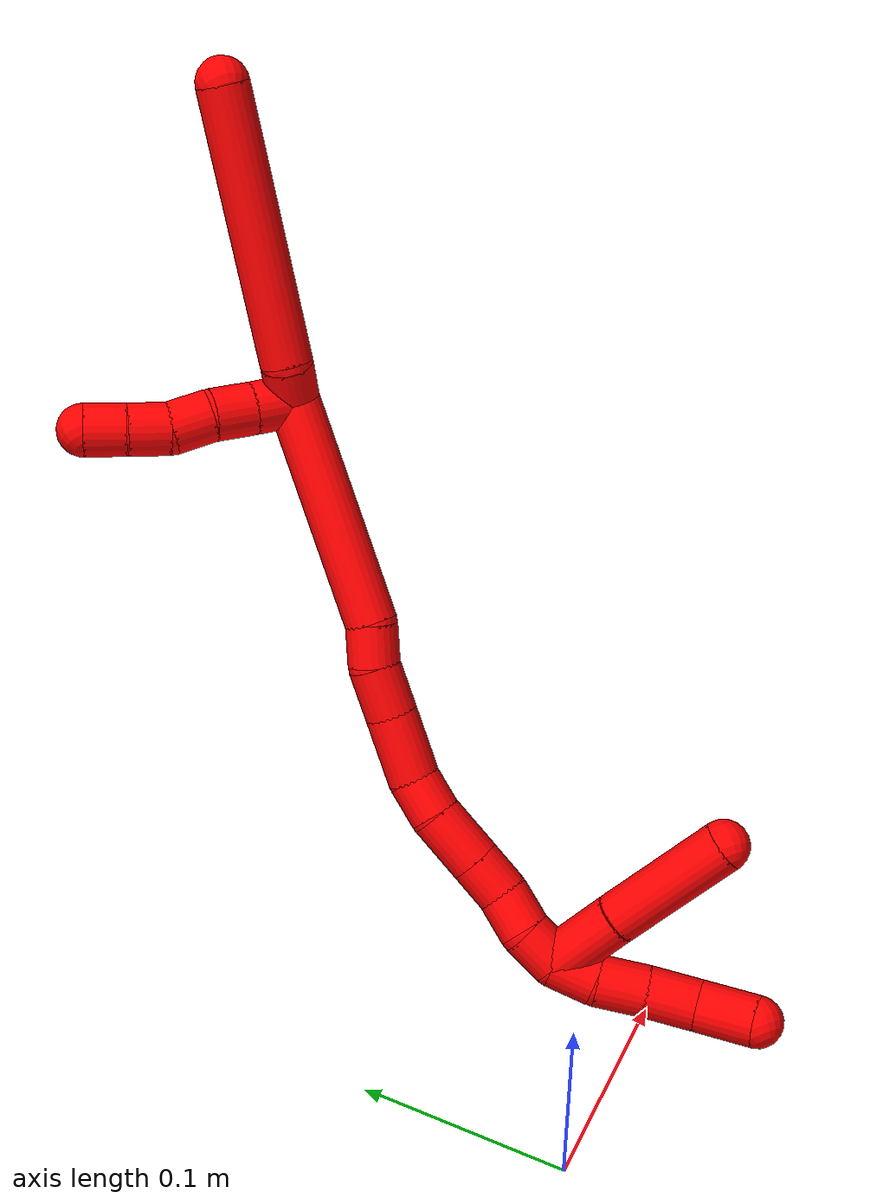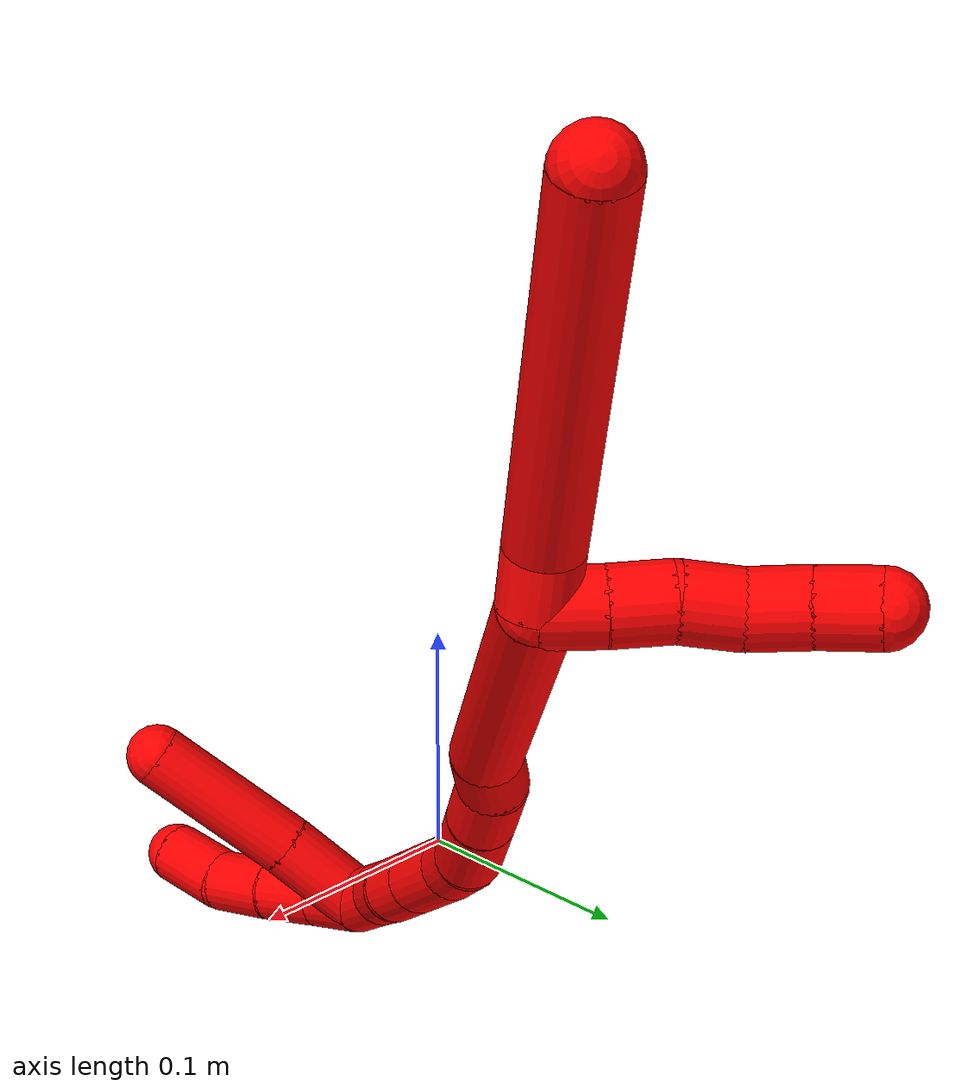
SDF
<sdf version="1.7">
 <world name="default">
  <model name="2">
   <static>0</static>
   <link name="2">
    <collision name="collision-cylinder-e_1_2_8">
     <pose>-0.006278 0.005696 0.005312 -0.820234 -0.678414 0.30444</pose>
     <geometry><cylinder><radius>0.0125</radius><length>0.020007</length></cylinder></geometry>
     <surface>
      <friction><ode><mu>1.16</mu><mu2>1.16</mu2><slip1>0</slip1><slip2>0</slip2></ode></friction>
      <contact><ode><kp>1e+06</kp><kd>1</kd><max_vel>0</max_vel><min_depth>0.001</min_depth></ode></contact>
     </surface>
    </collision>
    <visual name="visual-cylinder-e_1_2_8">
     <pose>-0.006278 0.005696 0.005312 -0.820234 -0.678414 0.30444</pose>
     <geometry><cylinder><radius>0.0125</radius><length>0.020007</length></cylinder></geometry>
     <material><ambient>1 0 0 1</ambient></material>
    </visual>
    <collision name="collision-cylinder-e_2_8_6">
     <pose>-0.044353 0.038367 0.060482 -0.495955 -0.511193 0.13213</pose>
     <geometry><cylinder><radius>0.0125</radius><length>0.129993</length></cylinder></geometry>
     <surface>
      <friction><ode><mu>1.16</mu><mu2>1.16</mu2><slip1>0</slip1><slip2>0</slip2></ode></friction>
      <contact><ode><kp>1e+06</kp><kd>1</kd><max_vel>0</max_vel><min_depth>0.001</min_depth></ode></contact>
     </surface>
    </collision>
    <visual name="visual-cylinder-e_2_8_6">
     <pose>-0.044353 0.038367 0.060482 -0.495955 -0.511193 0.13213</pose>
     <geometry><cylinder><radius>0.0125</radius><length>0.129993</length></cylinder></geometry>
     <material><ambient>1 0 0 1</ambient></material>
    </visual>
    <collision name="collision-cylinder-e_1_2_9">
     <pose>0.005971 0.008007 0.000493 -1.50935 0.639873 -0.604059</pose>
     <geometry><cylinder><radius>0.0125</radius><length>0.02</length></cylinder></geometry>
     <surface>
      <friction><ode><mu>1.16</mu><mu2>1.16</mu2><slip1>0</slip1><slip2>0</slip2></ode></friction>
      <contact><ode><kp>1e+06</kp><kd>1</kd><max_vel>0</max_vel><min_depth>0.001</min_depth></ode></contact>
     </surface>
    </collision>
    <visual name="visual-cylinder-e_1_2_9">
     <pose>0.005971 0.008007 0.000493 -1.50935 0.639873 -0.604059</pose>
     <geometry><cylinder><radius>0.0125</radius><length>0.02</length></cylinder></geometry>
     <material><ambient>1 0 0 1</ambient></material>
    </visual>
    <collision name="collision-cylinder-e_2_9_10">
     <pose>0.017486 0.024321 0.001478 -1.51156 0.587687 -0.555626</pose>
     <geometry><cylinder><radius>0.0125</radius><length>0.02</length></cylinder></geometry>
     <surface>
      <friction><ode><mu>1.16</mu><mu2>1.16</mu2><slip1>0</slip1><slip2>0</slip2></ode></friction>
      <contact><ode><kp>1e+06</kp><kd>1</kd><max_vel>0</max_vel><min_depth>0.001</min_depth></ode></contact>
     </surface>
    </collision>
    <visual name="visual-cylinder-e_2_9_10">
     <pose>0.017486 0.024321 0.001478 -1.51156 0.587687 -0.555626</pose>
     <geometry><cylinder><radius>0.0125</radius><length>0.02</length></cylinder></geometry>
     <material><ambient>1 0 0 1</ambient></material>
    </visual>
    <collision name="collision-cylinder-e_3_10_11">
     <pose>0.030052 0.039747 0.001791 -1.59604 0.778368 -0.796257</pose>
     <geometry><cylinder><radius>0.0125</radius><length>0.02</length></cylinder></geometry>
     <surface>
      <friction><ode><mu>1.16</mu><mu2>1.16</mu2><slip1>0</slip1><slip2>0</slip2></ode></friction>
      <contact><ode><kp>1e+06</kp><kd>1</kd><max_vel>0</max_vel><min_depth>0.001</min_depth></ode></contact>
     </surface>
    </collision>
    <visual name="visual-cylinder-e_3_10_11">
     <pose>0.030052 0.039747 0.001791 -1.59604 0.778368 -0.796257</pose>
     <geometry><cylinder><radius>0.0125</radius><length>0.02</length></cylinder></geometry>
     <material><ambient>1 0 0 1</ambient></material>
    </visual>
    <collision name="collision-cylinder-e_4_11_12">
     <pose>0.0429 0.05464 0.003979 -1.2752 0.622047 -0.467573</pose>
     <geometry><cylinder><radius>0.0125</radius><length>0.02</length></cylinder></geometry>
     <surface>
      <friction><ode><mu>1.16</mu><mu2>1.16</mu2><slip1>0</slip1><slip2>0</slip2></ode></friction>
      <contact><ode><kp>1e+06</kp><kd>1</kd><max_vel>0</max_vel><min_depth>0.001</min_depth></ode></contact>
     </surface>
    </collision>
    <visual name="visual-cylinder-e_4_11_12">
     <pose>0.0429 0.05464 0.003979 -1.2752 0.622047 -0.467573</pose>
     <geometry><cylinder><radius>0.0125</radius><length>0.02</length></cylinder></geometry>
     <material><ambient>1 0 0 1</ambient></material>
    </visual>
    <collision name="collision-cylinder-e_5_12_5">
     <pose>0.054869 0.069779 0.009182 -1.20324 0.661334 -0.462874</pose>
     <geometry><cylinder><radius>0.0125</radius><length>0.02</length></cylinder></geometry>
     <surface>
      <friction><ode><mu>1.16</mu><mu2>1.16</mu2><slip1>0</slip1><slip2>0</slip2></ode></friction>
      <contact><ode><kp>1e+06</kp><kd>1</kd><max_vel>0</max_vel><min_depth>0.001</min_depth></ode></contact>
     </surface>
    </collision>
    <visual name="visual-cylinder-e_5_12_5">
     <pose>0.054869 0.069779 0.009182 -1.20324 0.661334 -0.462874</pose>
     <geometry><cylinder><radius>0.0125</radius><length>0.02</length></cylinder></geometry>
     <material><ambient>1 0 0 1</ambient></material>
    </visual>
    <collision name="collision-cylinder-e_1_2_13">
     <pose>0.01456 -0.016321 -0.051042 2.83211 0.265296 1.41524</pose>
     <geometry><cylinder><radius>0.0125</radius><length>0.11106</length></cylinder></geometry>
     <surface>
      <friction><ode><mu>1.16</mu><mu2>1.16</mu2><slip1>0</slip1><slip2>0</slip2></ode></friction>
      <contact><ode><kp>1e+06</kp><kd>1</kd><max_vel>0</max_vel><min_depth>0.001</min_depth></ode></contact>
     </surface>
    </collision>
    <visual name="visual-cylinder-e_1_2_13">
     <pose>0.01456 -0.016321 -0.051042 2.83211 0.265296 1.41524</pose>
     <geometry><cylinder><radius>0.0125</radius><length>0.11106</length></cylinder></geometry>
     <material><ambient>1 0 0 1</ambient></material>
    </visual>
    <collision name="collision-cylinder-e_2_13_14">
     <pose>0.034285 -0.034528 -0.110574 2.92296 0.535928 2.38104</pose>
     <geometry><cylinder><radius>0.0125</radius><length>0.020232</length></cylinder></geometry>
     <surface>
      <friction><ode><mu>1.16</mu><mu2>1.16</mu2><slip1>0</slip1><slip2>0</slip2></ode></friction>
      <contact><ode><kp>1e+06</kp><kd>1</kd><max_vel>0</max_vel><min_depth>0.001</min_depth></ode></contact>
     </surface>
    </collision>
    <visual name="visual-cylinder-e_2_13_14">
     <pose>0.034285 -0.034528 -0.110574 2.92296 0.535928 2.38104</pose>
     <geometry><cylinder><radius>0.0125</radius><length>0.020232</length></cylinder></geometry>
     <material><ambient>1 0 0 1</ambient></material>
    </visual>
    <collision name="collision-cylinder-e_3_14_15">
     <pose>0.043629 -0.041334 -0.129679 2.70761 0.343052 1.33199</pose>
     <geometry><cylinder><radius>0.0125</radius><length>0.024846</length></cylinder></geometry>
     <surface>
      <friction><ode><mu>1.16</mu><mu2>1.16</mu2><slip1>0</slip1><slip2>0</slip2></ode></friction>
      <contact><ode><kp>1e+06</kp><kd>1</kd><max_vel>0</max_vel><min_depth>0.001</min_depth></ode></contact>
     </surface>
    </collision>
    <visual name="visual-cylinder-e_3_14_15">
     <pose>0.043629 -0.041334 -0.129679 2.70761 0.343052 1.33199</pose>
     <geometry><cylinder><radius>0.0125</radius><length>0.024846</length></cylinder></geometry>
     <material><ambient>1 0 0 1</ambient></material>
    </visual>
    <collision name="collision-cylinder-e_4_15_16">
     <pose>0.052874 -0.052066 -0.155101 2.76751 0.308307 1.37488</pose>
     <geometry><cylinder><radius>0.0125</radius><length>0.033389</length></cylinder></geometry>
     <surface>
      <friction><ode><mu>1.16</mu><mu2>1.16</mu2><slip1>0</slip1><slip2>0</slip2></ode></friction>
      <contact><ode><kp>1e+06</kp><kd>1</kd><max_vel>0</max_vel><min_depth>0.001</min_depth></ode></contact>
     </surface>
    </collision>
    <visual name="visual-cylinder-e_4_15_16">
     <pose>0.052874 -0.052066 -0.155101 2.76751 0.308307 1.37488</pose>
     <geometry><cylinder><radius>0.0125</radius><length>0.033389</length></cylinder></geometry>
     <material><ambient>1 0 0 1</ambient></material>
    </visual>
    <collision name="collision-cylinder-e_5_16_17">
     <pose>0.058322 -0.061192 -0.179341 2.80381 0.0382 0.22312</pose>
     <geometry><cylinder><radius>0.0125</radius><length>0.02001</length></cylinder></geometry>
     <surface>
      <friction><ode><mu>1.16</mu><mu2>1.16</mu2><slip1>0</slip1><slip2>0</slip2></ode></friction>
      <contact><ode><kp>1e+06</kp><kd>1</kd><max_vel>0</max_vel><min_depth>0.001</min_depth></ode></contact>
     </surface>
    </collision>
    <visual name="visual-cylinder-e_5_16_17">
     <pose>0.058322 -0.061192 -0.179341 2.80381 0.0382 0.22312</pose>
     <geometry><cylinder><radius>0.0125</radius><length>0.02001</length></cylinder></geometry>
     <material><ambient>1 0 0 1</ambient></material>
    </visual>
    <collision name="collision-cylinder-e_6_17_18">
     <pose>0.057792 -0.071274 -0.201433 2.65062 -0.063434 -0.251935</pose>
     <geometry><cylinder><radius>0.0125</radius><length>0.028769</length></cylinder></geometry>
     <surface>
      <friction><ode><mu>1.16</mu><mu2>1.16</mu2><slip1>0</slip1><slip2>0</slip2></ode></friction>
      <contact><ode><kp>1e+06</kp><kd>1</kd><max_vel>0</max_vel><min_depth>0.001</min_depth></ode></contact>
     </surface>
    </collision>
    <visual name="visual-cylinder-e_6_17_18">
     <pose>0.057792 -0.071274 -0.201433 2.65062 -0.063434 -0.251935</pose>
     <geometry><cylinder><radius>0.0125</radius><length>0.028769</length></cylinder></geometry>
     <material><ambient>1 0 0 1</ambient></material>
    </visual>
    <collision name="collision-cylinder-e_7_18_19">
     <pose>0.056216 -0.082861 -0.223237 2.65653 -0.064219 -0.25822</pose>
     <geometry><cylinder><radius>0.0125</radius><length>0.020715</length></cylinder></geometry>
     <surface>
      <friction><ode><mu>1.16</mu><mu2>1.16</mu2><slip1>0</slip1><slip2>0</slip2></ode></friction>
      <contact><ode><kp>1e+06</kp><kd>1</kd><max_vel>0</max_vel><min_depth>0.001</min_depth></ode></contact>
     </surface>
    </collision>
    <visual name="visual-cylinder-e_7_18_19">
     <pose>0.056216 -0.082861 -0.223237 2.65653 -0.064219 -0.25822</pose>
     <geometry><cylinder><radius>0.0125</radius><length>0.020715</length></cylinder></geometry>
     <material><ambient>1 0 0 1</ambient></material>
    </visual>
    <collision name="collision-cylinder-e_8_19_20">
     <pose>0.055314 -0.090203 -0.242417 2.89535 -0.022844 -0.184086</pose>
     <geometry><cylinder><radius>0.0125</radius><length>0.020702</length></cylinder></geometry>
     <surface>
      <friction><ode><mu>1.16</mu><mu2>1.16</mu2><slip1>0</slip1><slip2>0</slip2></ode></friction>
      <contact><ode><kp>1e+06</kp><kd>1</kd><max_vel>0</max_vel><min_depth>0.001</min_depth></ode></contact>
     </surface>
    </collision>
    <visual name="visual-cylinder-e_8_19_20">
     <pose>0.055314 -0.090203 -0.242417 2.89535 -0.022844 -0.184086</pose>
     <geometry><cylinder><radius>0.0125</radius><length>0.020702</length></cylinder></geometry>
     <material><ambient>1 0 0 1</ambient></material>
    </visual>
    <collision name="collision-cylinder-e_9_20_1">
     <pose>0.053888 -0.097836 -0.261128 2.60928 -0.117646 -0.425493</pose>
     <geometry><cylinder><radius>0.0125</radius><length>0.020277</length></cylinder></geometry>
     <surface>
      <friction><ode><mu>1.16</mu><mu2>1.16</mu2><slip1>0</slip1><slip2>0</slip2></ode></friction>
      <contact><ode><kp>1e+06</kp><kd>1</kd><max_vel>0</max_vel><min_depth>0.001</min_depth></ode></contact>
     </surface>
    </collision>
    <visual name="visual-cylinder-e_9_20_1">
     <pose>0.053888 -0.097836 -0.261128 2.60928 -0.117646 -0.425493</pose>
     <geometry><cylinder><radius>0.0125</radius><length>0.020277</length></cylinder></geometry>
     <material><ambient>1 0 0 1</ambient></material>
    </visual>
    <collision name="collision-cylinder-e_1_1_21">
     <pose>0.047592 -0.108576 -0.277222 2.49236 -0.501483 -1.30116</pose>
     <geometry><cylinder><radius>0.0125</radius><length>0.021241</length></cylinder></geometry>
     <surface>
      <friction><ode><mu>1.16</mu><mu2>1.16</mu2><slip1>0</slip1><slip2>0</slip2></ode></friction>
      <contact><ode><kp>1e+06</kp><kd>1</kd><max_vel>0</max_vel><min_depth>0.001</min_depth></ode></contact>
     </surface>
    </collision>
    <visual name="visual-cylinder-e_1_1_21">
     <pose>0.047592 -0.108576 -0.277222 2.49236 -0.501483 -1.30116</pose>
     <geometry><cylinder><radius>0.0125</radius><length>0.021241</length></cylinder></geometry>
     <material><ambient>1 0 0 1</ambient></material>
    </visual>
    <collision name="collision-cylinder-e_2_21_22">
     <pose>0.035533 -0.121725 -0.291055 2.27715 -0.613134 -1.2028</pose>
     <geometry><cylinder><radius>0.0125</radius><length>0.024169</length></cylinder></geometry>
     <surface>
      <friction><ode><mu>1.16</mu><mu2>1.16</mu2><slip1>0</slip1><slip2>0</slip2></ode></friction>
      <contact><ode><kp>1e+06</kp><kd>1</kd><max_vel>0</max_vel><min_depth>0.001</min_depth></ode></contact>
     </surface>
    </collision>
    <visual name="visual-cylinder-e_2_21_22">
     <pose>0.035533 -0.121725 -0.291055 2.27715 -0.613134 -1.2028</pose>
     <geometry><cylinder><radius>0.0125</radius><length>0.024169</length></cylinder></geometry>
     <material><ambient>1 0 0 1</ambient></material>
    </visual>
    <collision name="collision-cylinder-e_3_22_23">
     <pose>0.021157 -0.13649 -0.304866 2.36641 -0.6219 -1.33379</pose>
     <geometry><cylinder><radius>0.0125</radius><length>0.025479</length></cylinder></geometry>
     <surface>
      <friction><ode><mu>1.16</mu><mu2>1.16</mu2><slip1>0</slip1><slip2>0</slip2></ode></friction>
      <contact><ode><kp>1e+06</kp><kd>1</kd><max_vel>0</max_vel><min_depth>0.001</min_depth></ode></contact>
     </surface>
    </collision>
    <visual name="visual-cylinder-e_3_22_23">
     <pose>0.021157 -0.13649 -0.304866 2.36641 -0.6219 -1.33379</pose>
     <geometry><cylinder><radius>0.0125</radius><length>0.025479</length></cylinder></geometry>
     <material><ambient>1 0 0 1</ambient></material>
    </visual>
    <collision name="collision-cylinder-e_4_23_4">
     <pose>0.003261 -0.14853 -0.321159 2.64743 -0.803279 -2.06977</pose>
     <geometry><cylinder><radius>0.0125</radius><length>0.029111</length></cylinder></geometry>
     <surface>
      <friction><ode><mu>1.16</mu><mu2>1.16</mu2><slip1>0</slip1><slip2>0</slip2></ode></friction>
      <contact><ode><kp>1e+06</kp><kd>1</kd><max_vel>0</max_vel><min_depth>0.001</min_depth></ode></contact>
     </surface>
    </collision>
    <visual name="visual-cylinder-e_4_23_4">
     <pose>0.003261 -0.14853 -0.321159 2.64743 -0.803279 -2.06977</pose>
     <geometry><cylinder><radius>0.0125</radius><length>0.029111</length></cylinder></geometry>
     <material><ambient>1 0 0 1</ambient></material>
    </visual>
    <collision name="collision-cylinder-e_1_1_24">
     <pose>0.034715 -0.107239 -0.266967 0.986977 -1.29211 -0.770577</pose>
     <geometry><cylinder><radius>0.0125</radius><length>0.03741</length></cylinder></geometry>
     <surface>
      <friction><ode><mu>1.16</mu><mu2>1.16</mu2><slip1>0</slip1><slip2>0</slip2></ode></friction>
      <contact><ode><kp>1e+06</kp><kd>1</kd><max_vel>0</max_vel><min_depth>0.001</min_depth></ode></contact>
     </surface>
    </collision>
    <visual name="visual-cylinder-e_1_1_24">
     <pose>0.034715 -0.107239 -0.266967 0.986977 -1.29211 -0.770577</pose>
     <geometry><cylinder><radius>0.0125</radius><length>0.03741</length></cylinder></geometry>
     <material><ambient>1 0 0 1</ambient></material>
    </visual>
    <collision name="collision-cylinder-e_2_24_3">
     <pose>-0.012929 -0.120391 -0.259529 1.09168 -1.24613 -0.82305</pose>
     <geometry><cylinder><radius>0.0125</radius><length>0.06259</length></cylinder></geometry>
     <surface>
      <friction><ode><mu>1.16</mu><mu2>1.16</mu2><slip1>0</slip1><slip2>0</slip2></ode></friction>
      <contact><ode><kp>1e+06</kp><kd>1</kd><max_vel>0</max_vel><min_depth>0.001</min_depth></ode></contact>
     </surface>
    </collision>
    <visual name="visual-cylinder-e_2_24_3">
     <pose>-0.012929 -0.120391 -0.259529 1.09168 -1.24613 -0.82305</pose>
     <geometry><cylinder><radius>0.0125</radius><length>0.06259</length></cylinder></geometry>
     <material><ambient>1 0 0 1</ambient></material>
    </visual>
    <collision name="collision-sphere-3">
     <pose>-0.042589 -0.12925 -0.254927 0 -0 0</pose>
     <geometry><sphere><radius>0.0125</radius></sphere></geometry>
     <surface>
      <friction><ode><mu>1.16</mu><mu2>1.16</mu2><slip1>0</slip1><slip2>0</slip2></ode></friction>
      <contact><ode><kp>1e+06</kp><kd>1</kd><max_vel>0</max_vel><min_depth>0.001</min_depth></ode></contact>
     </surface>
    </collision>
    <visual name="visual-sphere-3">
     <pose>-0.042589 -0.12925 -0.254927 0 -0 0</pose>
     <geometry><sphere><radius>0.0125</radius></sphere></geometry>
     <material><ambient>1 0 0 1</ambient></material>
    </visual>
    <collision name="collision-sphere-24">
     <pose>0.016732 -0.111532 -0.264131 0 -0 0</pose>
     <geometry><sphere><radius>0.0125</radius></sphere></geometry>
     <surface>
      <friction><ode><mu>1.16</mu><mu2>1.16</mu2><slip1>0</slip1><slip2>0</slip2></ode></friction>
      <contact><ode><kp>1e+06</kp><kd>1</kd><max_vel>0</max_vel><min_depth>0.001</min_depth></ode></contact>
     </surface>
    </collision>
    <visual name="visual-sphere-24">
     <pose>0.016732 -0.111532 -0.264131 0 -0 0</pose>
     <geometry><sphere><radius>0.0125</radius></sphere></geometry>
     <material><ambient>1 0 0 1</ambient></material>
    </visual>
    <collision name="collision-sphere-4">
     <pose>-0.007214 -0.153323 -0.330057 0 -0 0</pose>
     <geometry><sphere><radius>0.0125</radius></sphere></geometry>
     <surface>
      <friction><ode><mu>1.16</mu><mu2>1.16</mu2><slip1>0</slip1><slip2>0</slip2></ode></friction>
      <contact><ode><kp>1e+06</kp><kd>1</kd><max_vel>0</max_vel><min_depth>0.001</min_depth></ode></contact>
     </surface>
    </collision>
    <visual name="visual-sphere-4">
     <pose>-0.007214 -0.153323 -0.330057 0 -0 0</pose>
     <geometry><sphere><radius>0.0125</radius></sphere></geometry>
     <material><ambient>1 0 0 1</ambient></material>
    </visual>
    <collision name="collision-sphere-23">
     <pose>0.013735 -0.143737 -0.312262 0 -0 0</pose>
     <geometry><sphere><radius>0.0125</radius></sphere></geometry>
     <surface>
      <friction><ode><mu>1.16</mu><mu2>1.16</mu2><slip1>0</slip1><slip2>0</slip2></ode></friction>
      <contact><ode><kp>1e+06</kp><kd>1</kd><max_vel>0</max_vel><min_depth>0.001</min_depth></ode></contact>
     </surface>
    </collision>
    <visual name="visual-sphere-23">
     <pose>0.013735 -0.143737 -0.312262 0 -0 0</pose>
     <geometry><sphere><radius>0.0125</radius></sphere></geometry>
     <material><ambient>1 0 0 1</ambient></material>
    </visual>
    <collision name="collision-sphere-22">
     <pose>0.028579 -0.129243 -0.29747 0 -0 0</pose>
     <geometry><sphere><radius>0.0125</radius></sphere></geometry>
     <surface>
      <friction><ode><mu>1.16</mu><mu2>1.16</mu2><slip1>0</slip1><slip2>0</slip2></ode></friction>
      <contact><ode><kp>1e+06</kp><kd>1</kd><max_vel>0</max_vel><min_depth>0.001</min_depth></ode></contact>
     </surface>
    </collision>
    <visual name="visual-sphere-22">
     <pose>0.028579 -0.129243 -0.29747 0 -0 0</pose>
     <geometry><sphere><radius>0.0125</radius></sphere></geometry>
     <material><ambient>1 0 0 1</ambient></material>
    </visual>
    <collision name="collision-sphere-21">
     <pose>0.042487 -0.114207 -0.28464 0 -0 0</pose>
     <geometry><sphere><radius>0.0125</radius></sphere></geometry>
     <surface>
      <friction><ode><mu>1.16</mu><mu2>1.16</mu2><slip1>0</slip1><slip2>0</slip2></ode></friction>
      <contact><ode><kp>1e+06</kp><kd>1</kd><max_vel>0</max_vel><min_depth>0.001</min_depth></ode></contact>
     </surface>
    </collision>
    <visual name="visual-sphere-21">
     <pose>0.042487 -0.114207 -0.28464 0 -0 0</pose>
     <geometry><sphere><radius>0.0125</radius></sphere></geometry>
     <material><ambient>1 0 0 1</ambient></material>
    </visual>
    <collision name="collision-sphere-1">
     <pose>0.052698 -0.102946 -0.269804 0 -0 0</pose>
     <geometry><sphere><radius>0.0125</radius></sphere></geometry>
     <surface>
      <friction><ode><mu>1.16</mu><mu2>1.16</mu2><slip1>0</slip1><slip2>0</slip2></ode></friction>
      <contact><ode><kp>1e+06</kp><kd>1</kd><max_vel>0</max_vel><min_depth>0.001</min_depth></ode></contact>
     </surface>
    </collision>
    <visual name="visual-sphere-1">
     <pose>0.052698 -0.102946 -0.269804 0 -0 0</pose>
     <geometry><sphere><radius>0.0125</radius></sphere></geometry>
     <material><ambient>1 0 0 1</ambient></material>
    </visual>
    <collision name="collision-sphere-11">
     <pose>0.037073 0.046865 0.001611 0 -0 0</pose>
     <geometry><sphere><radius>0.0125</radius></sphere></geometry>
     <surface>
      <friction><ode><mu>1.16</mu><mu2>1.16</mu2><slip1>0</slip1><slip2>0</slip2></ode></friction>
      <contact><ode><kp>1e+06</kp><kd>1</kd><max_vel>0</max_vel><min_depth>0.001</min_depth></ode></contact>
     </surface>
    </collision>
    <visual name="visual-sphere-11">
     <pose>0.037073 0.046865 0.001611 0 -0 0</pose>
     <geometry><sphere><radius>0.0125</radius></sphere></geometry>
     <material><ambient>1 0 0 1</ambient></material>
    </visual>
    <collision name="collision-sphere-10">
     <pose>0.023031 0.032628 0.001971 0 -0 0</pose>
     <geometry><sphere><radius>0.0125</radius></sphere></geometry>
     <surface>
      <friction><ode><mu>1.16</mu><mu2>1.16</mu2><slip1>0</slip1><slip2>0</slip2></ode></friction>
      <contact><ode><kp>1e+06</kp><kd>1</kd><max_vel>0</max_vel><min_depth>0.001</min_depth></ode></contact>
     </surface>
    </collision>
    <visual name="visual-sphere-10">
     <pose>0.023031 0.032628 0.001971 0 -0 0</pose>
     <geometry><sphere><radius>0.0125</radius></sphere></geometry>
     <material><ambient>1 0 0 1</ambient></material>
    </visual>
    <collision name="collision-sphere-6">
     <pose>-0.07615 0.065343 0.110339 0 -0 0</pose>
     <geometry><sphere><radius>0.0125</radius></sphere></geometry>
     <surface>
      <friction><ode><mu>1.16</mu><mu2>1.16</mu2><slip1>0</slip1><slip2>0</slip2></ode></friction>
      <contact><ode><kp>1e+06</kp><kd>1</kd><max_vel>0</max_vel><min_depth>0.001</min_depth></ode></contact>
     </surface>
    </collision>
    <visual name="visual-sphere-6">
     <pose>-0.07615 0.065343 0.110339 0 -0 0</pose>
     <geometry><sphere><radius>0.0125</radius></sphere></geometry>
     <material><ambient>1 0 0 1</ambient></material>
    </visual>
    <collision name="collision-sphere-9">
     <pose>0.011942 0.016013 0.000985 0 -0 0</pose>
     <geometry><sphere><radius>0.0125</radius></sphere></geometry>
     <surface>
      <friction><ode><mu>1.16</mu><mu2>1.16</mu2><slip1>0</slip1><slip2>0</slip2></ode></friction>
      <contact><ode><kp>1e+06</kp><kd>1</kd><max_vel>0</max_vel><min_depth>0.001</min_depth></ode></contact>
     </surface>
    </collision>
    <visual name="visual-sphere-9">
     <pose>0.011942 0.016013 0.000985 0 -0 0</pose>
     <geometry><sphere><radius>0.0125</radius></sphere></geometry>
     <material><ambient>1 0 0 1</ambient></material>
    </visual>
    <collision name="collision-sphere-2">
     <geometry><sphere><radius>0.0125</radius></sphere></geometry>
     <surface>
      <friction><ode><mu>1.16</mu><mu2>1.16</mu2><slip1>0</slip1><slip2>0</slip2></ode></friction>
      <contact><ode><kp>1e+06</kp><kd>1</kd><max_vel>0</max_vel><min_depth>0.001</min_depth></ode></contact>
     </surface>
    </collision>
    <visual name="visual-sphere-2">
     <geometry><sphere><radius>0.0125</radius></sphere></geometry>
     <material><ambient>1 0 0 1</ambient></material>
    </visual>
    <collision name="collision-sphere-19">
     <pose>0.055551 -0.087681 -0.232381 0 -0 0</pose>
     <geometry><sphere><radius>0.0125</radius></sphere></geometry>
     <surface>
      <friction><ode><mu>1.16</mu><mu2>1.16</mu2><slip1>0</slip1><slip2>0</slip2></ode></friction>
      <contact><ode><kp>1e+06</kp><kd>1</kd><max_vel>0</max_vel><min_depth>0.001</min_depth></ode></contact>
     </surface>
    </collision>
    <visual name="visual-sphere-19">
     <pose>0.055551 -0.087681 -0.232381 0 -0 0</pose>
     <geometry><sphere><radius>0.0125</radius></sphere></geometry>
     <material><ambient>1 0 0 1</ambient></material>
    </visual>
    <collision name="collision-sphere-8">
     <pose>-0.012556 0.011391 0.010624 0 -0 0</pose>
     <geometry><sphere><radius>0.0125</radius></sphere></geometry>
     <surface>
      <friction><ode><mu>1.16</mu><mu2>1.16</mu2><slip1>0</slip1><slip2>0</slip2></ode></friction>
      <contact><ode><kp>1e+06</kp><kd>1</kd><max_vel>0</max_vel><min_depth>0.001</min_depth></ode></contact>
     </surface>
    </collision>
    <visual name="visual-sphere-8">
     <pose>-0.012556 0.011391 0.010624 0 -0 0</pose>
     <geometry><sphere><radius>0.0125</radius></sphere></geometry>
     <material><ambient>1 0 0 1</ambient></material>
    </visual>
    <collision name="collision-sphere-12">
     <pose>0.048727 0.062414 0.006346 0 -0 0</pose>
     <geometry><sphere><radius>0.0125</radius></sphere></geometry>
     <surface>
      <friction><ode><mu>1.16</mu><mu2>1.16</mu2><slip1>0</slip1><slip2>0</slip2></ode></friction>
      <contact><ode><kp>1e+06</kp><kd>1</kd><max_vel>0</max_vel><min_depth>0.001</min_depth></ode></contact>
     </surface>
    </collision>
    <visual name="visual-sphere-12">
     <pose>0.048727 0.062414 0.006346 0 -0 0</pose>
     <geometry><sphere><radius>0.0125</radius></sphere></geometry>
     <material><ambient>1 0 0 1</ambient></material>
    </visual>
    <collision name="collision-sphere-5">
     <pose>0.06101 0.077143 0.012018 0 -0 0</pose>
     <geometry><sphere><radius>0.0125</radius></sphere></geometry>
     <surface>
      <friction><ode><mu>1.16</mu><mu2>1.16</mu2><slip1>0</slip1><slip2>0</slip2></ode></friction>
      <contact><ode><kp>1e+06</kp><kd>1</kd><max_vel>0</max_vel><min_depth>0.001</min_depth></ode></contact>
     </surface>
    </collision>
    <visual name="visual-sphere-5">
     <pose>0.06101 0.077143 0.012018 0 -0 0</pose>
     <geometry><sphere><radius>0.0125</radius></sphere></geometry>
     <material><ambient>1 0 0 1</ambient></material>
    </visual>
    <collision name="collision-sphere-13">
     <pose>0.029119 -0.032642 -0.102083 0 -0 0</pose>
     <geometry><sphere><radius>0.0125</radius></sphere></geometry>
     <surface>
      <friction><ode><mu>1.16</mu><mu2>1.16</mu2><slip1>0</slip1><slip2>0</slip2></ode></friction>
      <contact><ode><kp>1e+06</kp><kd>1</kd><max_vel>0</max_vel><min_depth>0.001</min_depth></ode></contact>
     </surface>
    </collision>
    <visual name="visual-sphere-13">
     <pose>0.029119 -0.032642 -0.102083 0 -0 0</pose>
     <geometry><sphere><radius>0.0125</radius></sphere></geometry>
     <material><ambient>1 0 0 1</ambient></material>
    </visual>
    <collision name="collision-sphere-14">
     <pose>0.039451 -0.036415 -0.119065 0 -0 0</pose>
     <geometry><sphere><radius>0.0125</radius></sphere></geometry>
     <surface>
      <friction><ode><mu>1.16</mu><mu2>1.16</mu2><slip1>0</slip1><slip2>0</slip2></ode></friction>
      <contact><ode><kp>1e+06</kp><kd>1</kd><max_vel>0</max_vel><min_depth>0.001</min_depth></ode></contact>
     </surface>
    </collision>
    <visual name="visual-sphere-14">
     <pose>0.039451 -0.036415 -0.119065 0 -0 0</pose>
     <geometry><sphere><radius>0.0125</radius></sphere></geometry>
     <material><ambient>1 0 0 1</ambient></material>
    </visual>
    <collision name="collision-sphere-15">
     <pose>0.047808 -0.046253 -0.140294 0 -0 0</pose>
     <geometry><sphere><radius>0.0125</radius></sphere></geometry>
     <surface>
      <friction><ode><mu>1.16</mu><mu2>1.16</mu2><slip1>0</slip1><slip2>0</slip2></ode></friction>
      <contact><ode><kp>1e+06</kp><kd>1</kd><max_vel>0</max_vel><min_depth>0.001</min_depth></ode></contact>
     </surface>
    </collision>
    <visual name="visual-sphere-15">
     <pose>0.047808 -0.046253 -0.140294 0 -0 0</pose>
     <geometry><sphere><radius>0.0125</radius></sphere></geometry>
     <material><ambient>1 0 0 1</ambient></material>
    </visual>
    <collision name="collision-sphere-16">
     <pose>0.05794 -0.057879 -0.169908 0 -0 0</pose>
     <geometry><sphere><radius>0.0125</radius></sphere></geometry>
     <surface>
      <friction><ode><mu>1.16</mu><mu2>1.16</mu2><slip1>0</slip1><slip2>0</slip2></ode></friction>
      <contact><ode><kp>1e+06</kp><kd>1</kd><max_vel>0</max_vel><min_depth>0.001</min_depth></ode></contact>
     </surface>
    </collision>
    <visual name="visual-sphere-16">
     <pose>0.05794 -0.057879 -0.169908 0 -0 0</pose>
     <geometry><sphere><radius>0.0125</radius></sphere></geometry>
     <material><ambient>1 0 0 1</ambient></material>
    </visual>
    <collision name="collision-sphere-17">
     <pose>0.058704 -0.064505 -0.188774 0 -0 0</pose>
     <geometry><sphere><radius>0.0125</radius></sphere></geometry>
     <surface>
      <friction><ode><mu>1.16</mu><mu2>1.16</mu2><slip1>0</slip1><slip2>0</slip2></ode></friction>
      <contact><ode><kp>1e+06</kp><kd>1</kd><max_vel>0</max_vel><min_depth>0.001</min_depth></ode></contact>
     </surface>
    </collision>
    <visual name="visual-sphere-17">
     <pose>0.058704 -0.064505 -0.188774 0 -0 0</pose>
     <geometry><sphere><radius>0.0125</radius></sphere></geometry>
     <material><ambient>1 0 0 1</ambient></material>
    </visual>
    <collision name="collision-sphere-18">
     <pose>0.05688 -0.078042 -0.214093 0 -0 0</pose>
     <geometry><sphere><radius>0.0125</radius></sphere></geometry>
     <surface>
      <friction><ode><mu>1.16</mu><mu2>1.16</mu2><slip1>0</slip1><slip2>0</slip2></ode></friction>
      <contact><ode><kp>1e+06</kp><kd>1</kd><max_vel>0</max_vel><min_depth>0.001</min_depth></ode></contact>
     </surface>
    </collision>
    <visual name="visual-sphere-18">
     <pose>0.05688 -0.078042 -0.214093 0 -0 0</pose>
     <geometry><sphere><radius>0.0125</radius></sphere></geometry>
     <material><ambient>1 0 0 1</ambient></material>
    </visual>
    <collision name="collision-sphere-20">
     <pose>0.055078 -0.092726 -0.252453 0 -0 0</pose>
     <geometry><sphere><radius>0.0125</radius></sphere></geometry>
     <surface>
      <friction><ode><mu>1.16</mu><mu2>1.16</mu2><slip1>0</slip1><slip2>0</slip2></ode></friction>
      <contact><ode><kp>1e+06</kp><kd>1</kd><max_vel>0</max_vel><min_depth>0.001</min_depth></ode></contact>
     </surface>
    </collision>
    <visual name="visual-sphere-20">
     <pose>0.055078 -0.092726 -0.252453 0 -0 0</pose>
     <geometry><sphere><radius>0.0125</radius></sphere></geometry>
     <material><ambient>1 0 0 1</ambient></material>
    </visual>
    <inertial>
     <pose>0.015359 -0.03958 -0.118123 0 -0 0</pose>
     <mass>0.75</mass>
     <inertia><ixx>0.000317</ixx><ixy>0</ixy><ixz>0</ixz><iyy>0.00031</iyy><iyz>0</iyz><izz>4.2e-05</izz></inertia>
    </inertial>
   </link>
   <pose>0.186971 0.228311 0.230432 0.911102 0.816306 1.89476</pose>
  </model>
 </world>
</sdf>
